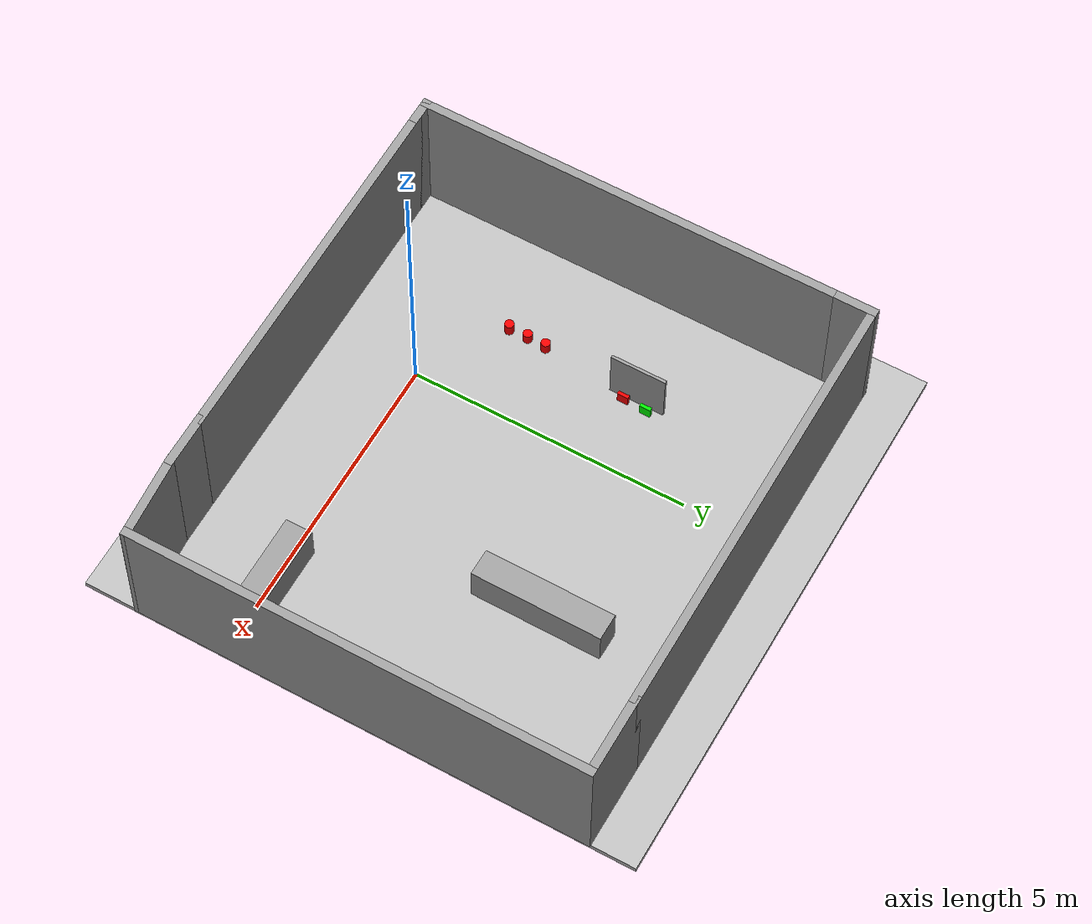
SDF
<sdf version="1.6">
 <world name="default">
  <scene>
   <ambient>1 1 1 1</ambient>
   <shadows>0</shadows>
   <grid>0</grid>
   <background>0.2 0.2 0.2 1</background>
  </scene>
  <model name="ground">
   <pose>0.943963 2.38398 -0.1 0 -0 0</pose>
   <static>1</static>
   <link name="ground">
    <collision name="ground_coll"><geometry><box><size>10 10 0.1</size></box></geometry></collision>
    <visual name="ground_vis">
     <geometry><box><size>10 10 0.1</size></box></geometry>
     <material><script><uri>file://course.material</uri><name>course</name></script></material>
    </visual>
   </link>
  </model>
  <gravity>0 0 -9.8</gravity>
  <magnetic_field>6e-06 2.3e-05 -4.2e-05</magnetic_field>
  <atmosphere type="adiabatic"/>
  <physics name="default_physics" default="0" type="ode">
   <max_step_size>0.001</max_step_size>
   <real_time_factor>1</real_time_factor>
   <real_time_update_rate>1000</real_time_update_rate>
  </physics>
  <spherical_coordinates>
   <surface_model>EARTH_WGS84</surface_model>
   <latitude_deg>0</latitude_deg>
   <longitude_deg>0</longitude_deg>
   <elevation>0</elevation>
   <heading_deg>0</heading_deg>
  </spherical_coordinates>
  <model name="unit_box_clone_clone">
   <link name="link">
    <inertial>
     <mass>1</mass>
     <inertia>
      <ixx>0.166667</ixx>
      <ixy>0</ixy>
      <ixz>0</ixz>
      <iyy>0.166667</iyy>
      <iyz>0</iyz>
      <izz>0.166667</izz>
     </inertia>
    </inertial>
    <visual name="visual">
     <geometry><box><size>2.33738 0.481233 0.678293</size></box></geometry>
     <material>
      <script><name>Gazebo/Grey</name><uri>file://media/materials/scripts/gazebo.material</uri></script>
      <shader type="pixel"><normal_map>__default__</normal_map></shader>
      <ambient>0.3 0.3 0.3 1</ambient>
      <diffuse>0.7 0.7 0.7 1</diffuse>
      <specular>0.01 0.01 0.01 1</specular>
      <emissive>0 0 0 1</emissive>
     </material>
    </visual>
    <collision name="collision">
     <geometry><box><size>2.33738 0.481233 0.678293</size></box></geometry>
     <surface>
      <friction>
       <ode><mu>1</mu><mu2>1</mu2><fdir1>0 0 0</fdir1><slip1>0</slip1><slip2>0</slip2></ode>
       <torsional>
        <coefficient>1</coefficient>
        <patch_radius>0</patch_radius>
        <surface_radius>0</surface_radius>
        <use_patch_radius>1</use_patch_radius>
        <ode><slip>0</slip></ode>
       </torsional>
      </friction>
      <bounce><restitution_coefficient>0</restitution_coefficient><threshold>1e+06</threshold></bounce>
      <contact>
       <collide_without_contact>0</collide_without_contact>
       <collide_without_contact_bitmask>1</collide_without_contact_bitmask>
       <collide_bitmask>1</collide_bitmask>
       <ode>
        <soft_cfm>0</soft_cfm>
        <soft_erp>0.2</soft_erp>
        <kp>1e+13</kp>
        <kd>1</kd>
        <max_vel>0.01</max_vel>
        <min_depth>0</min_depth>
       </ode>
       <bullet>
        <split_impulse>1</split_impulse>
        <split_impulse_penetration_threshold>-0.01</split_impulse_penetration_threshold>
        <soft_cfm>0</soft_cfm>
        <soft_erp>0.2</soft_erp>
        <kp>1e+13</kp>
        <kd>1</kd>
       </bullet>
      </contact>
     </surface>
    </collision>
   </link>
   <static>0</static>
   <pose>2.83744 3.99726 0.289145 -6e-06 -0 -1.57504</pose>
  </model>
  <model name="unit_box_clone_0">
   <link name="link">
    <inertial>
     <mass>1</mass>
     <inertia>
      <ixx>0.166667</ixx>
      <ixy>0</ixy>
      <ixz>0</ixz>
      <iyy>0.166667</iyy>
      <iyz>0</iyz>
      <izz>0.166667</izz>
     </inertia>
    </inertial>
    <visual name="visual">
     <geometry><box><size>2.00263 0.481233 0.678293</size></box></geometry>
     <material>
      <script><name>Gazebo/Grey</name><uri>file://media/materials/scripts/gazebo.material</uri></script>
      <shader type="pixel"><normal_map>__default__</normal_map></shader>
      <ambient>0.3 0.3 0.3 1</ambient>
      <diffuse>0.7 0.7 0.7 1</diffuse>
      <specular>0.01 0.01 0.01 1</specular>
      <emissive>0 0 0 1</emissive>
     </material>
    </visual>
    <collision name="collision">
     <geometry><box><size>2.00263 0.481233 0.678293</size></box></geometry>
     <surface>
      <friction>
       <ode><mu>1</mu><mu2>1</mu2><fdir1>0 0 0</fdir1><slip1>0</slip1><slip2>0</slip2></ode>
       <torsional>
        <coefficient>1</coefficient>
        <patch_radius>0</patch_radius>
        <surface_radius>0</surface_radius>
        <use_patch_radius>1</use_patch_radius>
        <ode><slip>0</slip></ode>
       </torsional>
      </friction>
      <bounce><restitution_coefficient>0</restitution_coefficient><threshold>1e+06</threshold></bounce>
      <contact>
       <collide_without_contact>0</collide_without_contact>
       <collide_without_contact_bitmask>1</collide_without_contact_bitmask>
       <collide_bitmask>1</collide_bitmask>
       <ode>
        <soft_cfm>0</soft_cfm>
        <soft_erp>0.2</soft_erp>
        <kp>1e+13</kp>
        <kd>1</kd>
        <max_vel>0.01</max_vel>
        <min_depth>0</min_depth>
       </ode>
       <bullet>
        <split_impulse>1</split_impulse>
        <split_impulse_penetration_threshold>-0.01</split_impulse_penetration_threshold>
        <soft_cfm>0</soft_cfm>
        <soft_erp>0.2</soft_erp>
        <kp>1e+13</kp>
        <kd>1</kd>
       </bullet>
      </contact>
     </surface>
    </collision>
   </link>
   <static>0</static>
   <pose>4.68012 0.033648 0.289145 -6e-06 -0 -2.5e-05</pose>
  </model>
  <model name="red_cylinder">
   <link name="link">
    <inertial>
     <mass>1</mass>
     <inertia><ixx>0.145833</ixx><ixy>0</ixy><ixz>0</ixz><iyy>0.145833</iyy><iyz>0</iyz><izz>0.125</izz></inertia>
    </inertial>
    <visual name="visual">
     <geometry><cylinder><radius>0.0811909</radius><length>0.208608</length></cylinder></geometry>
     <material>
      <script><name>Gazebo/Grey</name><uri>file://media/materials/scripts/gazebo.material</uri></script>
      <shader type="pixel"><normal_map>__default__</normal_map></shader>
      <ambient>0.5 0 0 1</ambient>
      <diffuse>1 0 0 1</diffuse>
      <specular>0.01 0.01 0.01 1</specular>
      <emissive>0 0 0 1</emissive>
     </material>
    </visual>
    <collision name="collision">
     <geometry><cylinder><radius>0.081191</radius><length>0.208608</length></cylinder></geometry>
     <surface>
      <friction>
       <ode><mu>1</mu><mu2>1</mu2><fdir1>0 0 0</fdir1><slip1>0</slip1><slip2>0</slip2></ode>
       <torsional>
        <coefficient>1</coefficient>
        <patch_radius>0</patch_radius>
        <surface_radius>0</surface_radius>
        <use_patch_radius>1</use_patch_radius>
        <ode><slip>0</slip></ode>
       </torsional>
      </friction>
      <bounce><restitution_coefficient>0</restitution_coefficient><threshold>1e+06</threshold></bounce>
      <contact>
       <collide_without_contact>0</collide_without_contact>
       <collide_without_contact_bitmask>1</collide_without_contact_bitmask>
       <collide_bitmask>1</collide_bitmask>
       <ode>
        <soft_cfm>0</soft_cfm>
        <soft_erp>0.2</soft_erp>
        <kp>1e+13</kp>
        <kd>1</kd>
        <max_vel>0.01</max_vel>
        <min_depth>0</min_depth>
       </ode>
       <bullet>
        <split_impulse>1</split_impulse>
        <split_impulse_penetration_threshold>-0.01</split_impulse_penetration_threshold>
        <soft_cfm>0</soft_cfm>
        <soft_erp>0.2</soft_erp>
        <kp>1e+13</kp>
        <kd>1</kd>
       </bullet>
      </contact>
     </surface>
    </collision>
   </link>
   <static>0</static>
   <pose>-1.50982 1.6023 0.054302 -9.7e-05 -3.2e-05 0.001971</pose>
  </model>
  <model name="red_cylinder_clone">
   <link name="link">
    <inertial>
     <mass>1</mass>
     <inertia><ixx>0.145833</ixx><ixy>0</ixy><ixz>0</ixz><iyy>0.145833</iyy><iyz>0</iyz><izz>0.125</izz></inertia>
    </inertial>
    <visual name="visual">
     <geometry><cylinder><radius>0.0811909</radius><length>0.189303</length></cylinder></geometry>
     <material>
      <script><name>Gazebo/Grey</name><uri>file://media/materials/scripts/gazebo.material</uri></script>
      <shader type="pixel"><normal_map>__default__</normal_map></shader>
      <ambient>0.5 0 0 1</ambient>
      <diffuse>1 0 0 1</diffuse>
      <specular>0.01 0.01 0.01 1</specular>
      <emissive>0 0 0 1</emissive>
     </material>
    </visual>
    <collision name="collision">
     <geometry><cylinder><radius>0.081191</radius><length>0.189303</length></cylinder></geometry>
     <surface>
      <friction>
       <ode><mu>1</mu><mu2>1</mu2><fdir1>0 0 0</fdir1><slip1>0</slip1><slip2>0</slip2></ode>
       <torsional>
        <coefficient>1</coefficient>
        <patch_radius>0</patch_radius>
        <surface_radius>0</surface_radius>
        <use_patch_radius>1</use_patch_radius>
        <ode><slip>0</slip></ode>
       </torsional>
      </friction>
      <bounce><restitution_coefficient>0</restitution_coefficient><threshold>1e+06</threshold></bounce>
      <contact>
       <collide_without_contact>0</collide_without_contact>
       <collide_without_contact_bitmask>1</collide_without_contact_bitmask>
       <collide_bitmask>1</collide_bitmask>
       <ode>
        <soft_cfm>0</soft_cfm>
        <soft_erp>0.2</soft_erp>
        <kp>1e+13</kp>
        <kd>1</kd>
        <max_vel>0.01</max_vel>
        <min_depth>0</min_depth>
       </ode>
       <bullet>
        <split_impulse>1</split_impulse>
        <split_impulse_penetration_threshold>-0.01</split_impulse_penetration_threshold>
        <soft_cfm>0</soft_cfm>
        <soft_erp>0.2</soft_erp>
        <kp>1e+13</kp>
        <kd>1</kd>
       </bullet>
      </contact>
     </surface>
    </collision>
   </link>
   <static>0</static>
   <pose>-1.53238 1.2492 0.044658 -8.2e-05 2.9e-05 0.001972</pose>
  </model>
  <model name="red_cylinder_clone_0">
   <link name="link">
    <inertial>
     <mass>1</mass>
     <inertia><ixx>0.145833</ixx><ixy>0</ixy><ixz>0</ixz><iyy>0.145833</iyy><iyz>0</iyz><izz>0.125</izz></inertia>
    </inertial>
    <visual name="visual">
     <geometry><cylinder><radius>0.0811909</radius><length>0.217342</length></cylinder></geometry>
     <material>
      <script><name>Gazebo/Grey</name><uri>file://media/materials/scripts/gazebo.material</uri></script>
      <shader type="pixel"><normal_map>__default__</normal_map></shader>
      <ambient>0.5 0 0 1</ambient>
      <diffuse>1 0 0 1</diffuse>
      <specular>0.01 0.01 0.01 1</specular>
      <emissive>0 0 0 1</emissive>
     </material>
    </visual>
    <collision name="collision">
     <geometry><cylinder><radius>0.081191</radius><length>0.217342</length></cylinder></geometry>
     <surface>
      <friction>
       <ode><mu>1</mu><mu2>1</mu2><fdir1>0 0 0</fdir1><slip1>0</slip1><slip2>0</slip2></ode>
       <torsional>
        <coefficient>1</coefficient>
        <patch_radius>0</patch_radius>
        <surface_radius>0</surface_radius>
        <use_patch_radius>1</use_patch_radius>
        <ode><slip>0</slip></ode>
       </torsional>
      </friction>
      <bounce><restitution_coefficient>0</restitution_coefficient><threshold>1e+06</threshold></bounce>
      <contact>
       <collide_without_contact>0</collide_without_contact>
       <collide_without_contact_bitmask>1</collide_without_contact_bitmask>
       <collide_bitmask>1</collide_bitmask>
       <ode>
        <soft_cfm>0</soft_cfm>
        <soft_erp>0.2</soft_erp>
        <kp>1e+13</kp>
        <kd>1</kd>
        <max_vel>0.01</max_vel>
        <min_depth>0</min_depth>
       </ode>
       <bullet>
        <split_impulse>1</split_impulse>
        <split_impulse_penetration_threshold>-0.01</split_impulse_penetration_threshold>
        <soft_cfm>0</soft_cfm>
        <soft_erp>0.2</soft_erp>
        <kp>1e+13</kp>
        <kd>1</kd>
       </bullet>
      </contact>
     </surface>
    </collision>
   </link>
   <static>0</static>
   <pose>-1.52746 0.90255 0.058679 3.9e-05 -9.6e-05 0.001798</pose>
  </model>
  <model name="white_board">
   <link name="link">
    <inertial>
     <mass>1</mass>
     <inertia>
      <ixx>0.166667</ixx>
      <ixy>0</ixy>
      <ixz>0</ixz>
      <iyy>0.166667</iyy>
      <iyz>0</iyz>
      <izz>0.166667</izz>
     </inertia>
    </inertial>
    <visual name="visual">
     <geometry><box><size>0.052831 1 1</size></box></geometry>
     <material>
      <script><name>Gazebo/Grey</name><uri>file://media/materials/scripts/gazebo.material</uri></script>
      <shader type="pixel"><normal_map>__default__</normal_map></shader>
      <diffuse>1 1 1 1</diffuse>
      <specular>0.01 0.01 0.01 1</specular>
      <emissive>0 0 0 1</emissive>
     </material>
    </visual>
    <collision name="collision">
     <geometry><box><size>0.052831 1 1</size></box></geometry>
     <surface>
      <friction>
       <ode><mu>1</mu><mu2>1</mu2><fdir1>0 0 0</fdir1><slip1>0</slip1><slip2>0</slip2></ode>
       <torsional>
        <coefficient>1</coefficient>
        <patch_radius>0</patch_radius>
        <surface_radius>0</surface_radius>
        <use_patch_radius>1</use_patch_radius>
        <ode><slip>0</slip></ode>
       </torsional>
      </friction>
      <bounce><restitution_coefficient>0</restitution_coefficient><threshold>1e+06</threshold></bounce>
      <contact>
       <collide_without_contact>0</collide_without_contact>
       <collide_without_contact_bitmask>1</collide_without_contact_bitmask>
       <collide_bitmask>1</collide_bitmask>
       <ode>
        <soft_cfm>0</soft_cfm>
        <soft_erp>0.2</soft_erp>
        <kp>1e+13</kp>
        <kd>1</kd>
        <max_vel>0.01</max_vel>
        <min_depth>0</min_depth>
       </ode>
       <bullet>
        <split_impulse>1</split_impulse>
        <split_impulse_penetration_threshold>-0.01</split_impulse_penetration_threshold>
        <soft_cfm>0</soft_cfm>
        <soft_erp>0.2</soft_erp>
        <kp>1e+13</kp>
        <kd>1</kd>
       </bullet>
      </contact>
     </surface>
    </collision>
   </link>
   <static>0</static>
   <pose>-1.37414 3.40044 0.449996 0 2e-06 3.3e-05</pose>
  </model>
  <model name="walls">
   <pose>1.32258 2.42742 0 0 -0 0</pose>
   <link name="Wall_10">
    <collision name="Wall_10_Collision">
     <geometry><box><size>0.5 0.15 2.5</size></box></geometry>
     <pose>0 0 1.25 0 -0 0</pose>
    </collision>
    <visual name="Wall_10_Visual">
     <pose>0 0 1.25 0 -0 0</pose>
     <geometry><box><size>0.5 0.15 2.5</size></box></geometry>
     <material>
      <script><uri>file://media/materials/scripts/gazebo.material</uri><name>Gazebo/Grey</name></script>
      <diffuse>0.7 0.7 0.7 1</diffuse>
     </material>
     <meta><layer>0</layer></meta>
    </visual>
    <pose>-4.42758 -4.09742 0 0 -0 3.14159</pose>
   </link>
   <link name="Wall_11">
    <collision name="Wall_11_Collision">
     <geometry><box><size>7.75 0.15 2.5</size></box></geometry>
     <pose>0 0 1.25 0 -0 0</pose>
    </collision>
    <visual name="Wall_11_Visual">
     <pose>0 0 1.25 0 -0 0</pose>
     <geometry><box><size>7.75 0.15 2.5</size></box></geometry>
     <material>
      <script><uri>file://media/materials/scripts/gazebo.material</uri><name>Gazebo/Grey</name></script>
      <diffuse>0.7 0.7 0.7 1</diffuse>
     </material>
     <meta><layer>0</layer></meta>
    </visual>
    <pose>-4.60258 -0.297424 0 0 -0 1.5708</pose>
   </link>
   <link name="Wall_13">
    <collision name="Wall_13_Collision">
     <geometry><box><size>0.75 0.15 2.5</size></box></geometry>
     <pose>0 0 1.25 0 -0 0</pose>
    </collision>
    <visual name="Wall_13_Visual">
     <pose>0 0 1.25 0 -0 0</pose>
     <geometry><box><size>0.75 0.15 2.5</size></box></geometry>
     <material>
      <script><uri>file://media/materials/scripts/gazebo.material</uri><name>Gazebo/Grey</name></script>
      <diffuse>0.7 0.7 0.7 1</diffuse>
     </material>
     <meta><layer>0</layer></meta>
    </visual>
    <pose>-4.60258 3.80258 0 0 -0 1.5708</pose>
   </link>
   <link name="Wall_14">
    <collision name="Wall_14_Collision">
     <geometry><box><size>8 0.15 2.5</size></box></geometry>
     <pose>0 0 1.25 0 -0 0</pose>
    </collision>
    <visual name="Wall_14_Visual">
     <pose>0 0 1.25 0 -0 0</pose>
     <geometry><box><size>8 0.15 2.5</size></box></geometry>
     <material>
      <script><uri>file://media/materials/scripts/gazebo.material</uri><name>Gazebo/Grey</name></script>
      <diffuse>0.7 0.7 0.7 1</diffuse>
     </material>
     <meta><layer>0</layer></meta>
    </visual>
    <pose>-0.677576 4.10258 0 0 -0 0</pose>
   </link>
   <link name="Wall_16">
    <collision name="Wall_16_Collision">
     <geometry><box><size>1.5 0.15 2.5</size></box></geometry>
     <pose>0 0 1.25 0 -0 0</pose>
    </collision>
    <visual name="Wall_16_Visual">
     <pose>0 0 1.25 0 -0 0</pose>
     <geometry><box><size>1.5 0.15 2.5</size></box></geometry>
     <material>
      <script><uri>file://media/materials/scripts/gazebo.material</uri><name>Gazebo/Grey</name></script>
      <diffuse>0.7 0.7 0.7 1</diffuse>
     </material>
     <meta><layer>0</layer></meta>
    </visual>
    <pose>3.92242 4.10258 0 0 -0 0</pose>
   </link>
   <link name="Wall_17">
    <collision name="Wall_17_Collision">
     <geometry><box><size>8.25 0.15 2.5</size></box></geometry>
     <pose>0 0 1.25 0 -0 0</pose>
    </collision>
    <visual name="Wall_17_Visual">
     <pose>0 0 1.25 0 -0 0</pose>
     <geometry><box><size>8.25 0.15 2.5</size></box></geometry>
     <material>
      <script><uri>file://media/materials/scripts/gazebo.material</uri><name>Gazebo/Grey</name></script>
      <diffuse>0.7 0.7 0.7 1</diffuse>
     </material>
     <meta><layer>0</layer></meta>
    </visual>
    <pose>4.59742 0.052576 0 0 0 -1.5708</pose>
   </link>
   <link name="Wall_18">
    <collision name="Wall_18_Collision">
     <geometry><box><size>1.55357 0.15 2.5</size></box></geometry>
     <pose>0 0 1.25 0 -0 0</pose>
    </collision>
    <visual name="Wall_18_Visual">
     <pose>0 0 1.25 0 -0 0</pose>
     <geometry><box><size>1.55357 0.15 2.5</size></box></geometry>
     <material>
      <script><uri>file://media/materials/scripts/gazebo.material</uri><name>Gazebo/Grey</name></script>
      <diffuse>0.7 0.7 0.7 1</diffuse>
     </material>
     <meta><layer>0</layer></meta>
    </visual>
    <pose>3.89742 -4.04742 0 0 0 -3.07029</pose>
   </link>
   <link name="Wall_3">
    <collision name="Wall_3_Collision">
     <geometry><box><size>6.75 0.15 2.5</size></box></geometry>
     <pose>0 0 1.25 0 -0 0</pose>
    </collision>
    <visual name="Wall_3_Visual">
     <pose>0 0 1.25 0 -0 0</pose>
     <geometry><box><size>6.75 0.15 2.5</size></box></geometry>
     <material>
      <script><uri>file://media/materials/scripts/gazebo.material</uri><name>Gazebo/Grey</name></script>
      <diffuse>0.7 0.7 0.7 1</diffuse>
     </material>
     <meta><layer>0</layer></meta>
    </visual>
    <pose>-0.952576 -4.09742 0 0 -0 0</pose>
   </link>
   <link name="Wall_4">
    <collision name="Wall_4_Collision">
     <geometry><box><size>1 0.15 2.5</size></box></geometry>
     <pose>0 0 1.25 0 -0 0</pose>
    </collision>
    <visual name="Wall_4_Visual">
     <pose>0 0 1.25 0 -0 0</pose>
     <geometry><box><size>1 0.15 2.5</size></box></geometry>
     <material>
      <script><uri>file://media/materials/scripts/gazebo.material</uri><name>Gazebo/Grey</name></script>
      <diffuse>0.7 0.7 0.7 1</diffuse>
     </material>
     <meta><layer>0</layer></meta>
    </visual>
    <pose>2.77242 -4.09742 0 0 -0 0</pose>
   </link>
   <static>1</static>
  </model>
  <model name="unit_box_0_0">
   <pose>-1.23511 3.63243 0.054913 -1e-06 0 2e-06</pose>
   <link name="link">
    <inertial>
     <mass>1</mass>
     <inertia>
      <ixx>0.166667</ixx>
      <ixy>0</ixy>
      <ixz>0</ixz>
      <iyy>0.166667</iyy>
      <iyz>0</iyz>
      <izz>0.166667</izz>
     </inertia>
    </inertial>
    <collision name="collision">
     <geometry><box><size>0.0639183 0.200103 0.209826</size></box></geometry>
    </collision>
    <visual name="visual">
     <geometry><box><size>0.0639183 0.200103 0.209826</size></box></geometry>
     <material>
      <script><name>Gazebo/Grey</name><uri>file://media/materials/scripts/gazebo.material</uri></script>
      <shader type="pixel"><normal_map>__default__</normal_map></shader>
      <ambient>0 0.5 0 1</ambient>
      <diffuse>0 1 0 1</diffuse>
      <specular>0.01 0.01 0.01 1</specular>
      <emissive>0 0 0 1</emissive>
     </material>
    </visual>
   </link>
  </model>
  <model name="unit_box_0_0_clone">
   <pose>-1.2627 3.20381 0.054909 -3e-06 0 0</pose>
   <link name="link">
    <inertial>
     <mass>1</mass>
     <inertia>
      <ixx>0.166667</ixx>
      <ixy>0</ixy>
      <ixz>0</ixz>
      <iyy>0.166667</iyy>
      <iyz>0</iyz>
      <izz>0.166667</izz>
     </inertia>
    </inertial>
    <collision name="collision">
     <geometry><box><size>0.063918 0.200103 0.209826</size></box></geometry>
    </collision>
    <visual name="visual">
     <geometry><box><size>0.063918 0.200103 0.209826</size></box></geometry>
     <material>
      <script><name>Gazebo/Grey</name><uri>file://media/materials/scripts/gazebo.material</uri></script>
      <shader type="pixel"><normal_map>__default__</normal_map></shader>
      <ambient>0.5 0 0 1</ambient>
      <diffuse>1 0 0 1</diffuse>
      <specular>0.01 0.01 0.01 1</specular>
      <emissive>0 0 0 1</emissive>
     </material>
    </visual>
   </link>
  </model>
 </world>
</sdf>
